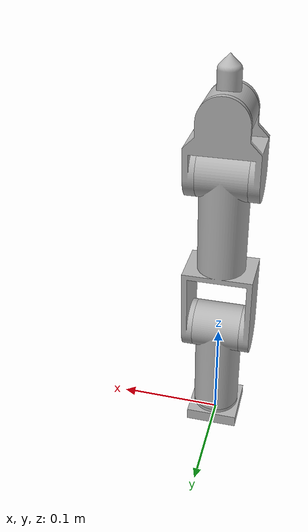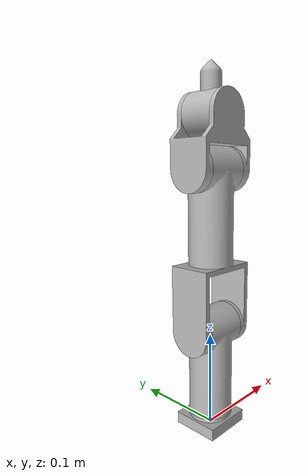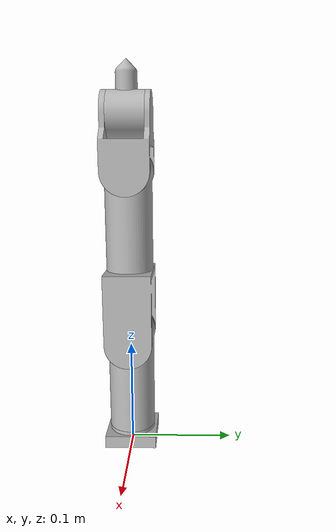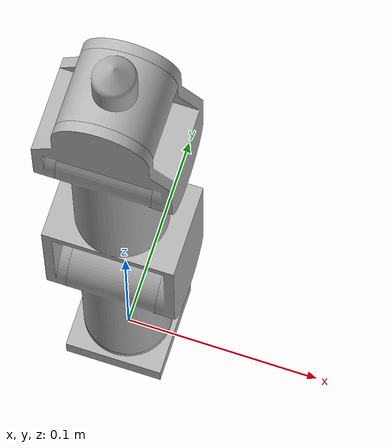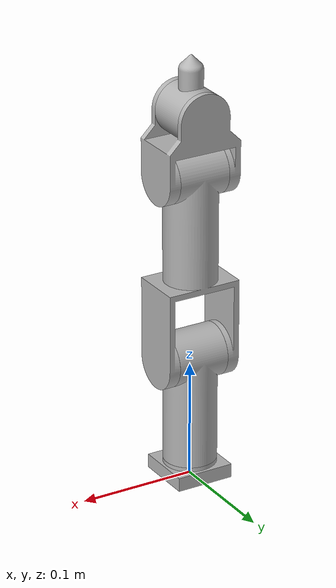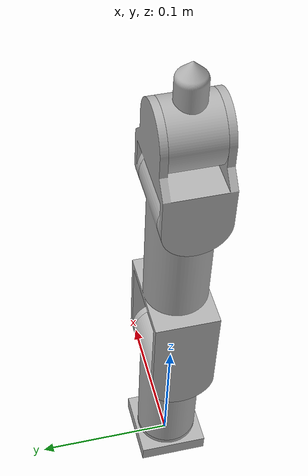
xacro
<?xml version="1.0" ?>
<robot name="4D_dyn_manip" xmlns:xacro="http://www.ros.org/wiki/xacro">

<xacro:include filename="$(find 4D_dyn_manip_description)/urdf/materials.xacro" />
<xacro:include filename="$(find 4D_dyn_manip_description)/urdf/4D_dyn_manip.trans" />
<xacro:include filename="$(find 4D_dyn_manip_description)/urdf/4D_dyn_manip.gazebo" />
<link name="base_link">
  <inertial>
    <origin xyz="-5.171119767084529e-16 -5.847343121241737e-16 0.007250066327963411" rpy="0 0 0"/>
    <mass value="0.28044558799766406"/>
    <inertia ixx="6e-05" iyy="6e-05" izz="0.00011" ixy="-0.0" iyz="-0.0" ixz="-0.0"/>
  </inertial>
  <visual>
    <origin xyz="0 0 0" rpy="0 0 0"/>
    <geometry>
      <mesh filename="package://4D_dyn_manip_description/meshes/base_link.stl" scale="0.001 0.001 0.001"/>
    </geometry>
    <material name="silver"/>
  </visual>
  <collision>
    <origin xyz="0 0 0" rpy="0 0 0"/>
    <geometry>
      <mesh filename="package://4D_dyn_manip_description/meshes/base_link.stl" scale="0.001 0.001 0.001"/>
    </geometry>
  </collision>
</link>

<link name="l1_1">
  <inertial>
    <origin xyz="0.0 0.0 0.05837926071734703" rpy="0 0 0"/>
    <mass value="1.4882159222435947"/>
    <inertia ixx="0.001798" iyy="0.001814" izz="0.000404" ixy="0.0" iyz="0.0" ixz="0.0"/>
  </inertial>
  <visual>
    <origin xyz="-0.0 -0.0 -0.0156" rpy="0 0 0"/>
    <geometry>
      <mesh filename="package://4D_dyn_manip_description/meshes/l1_1.stl" scale="0.001 0.001 0.001"/>
    </geometry>
    <material name="silver"/>
  </visual>
  <collision>
    <origin xyz="-0.0 -0.0 -0.0156" rpy="0 0 0"/>
    <geometry>
      <mesh filename="package://4D_dyn_manip_description/meshes/l1_1.stl" scale="0.001 0.001 0.001"/>
    </geometry>
  </collision>
</link>

<link name="l3_1">
  <inertial>
    <origin xyz="-0.0225 -4.6191202212010775e-17 0.019211679954911187" rpy="0 0 0"/>
    <mass value="0.5313164610981339"/>
    <inertia ixx="0.000383" iyy="0.00054" izz="0.00039" ixy="-0.0" iyz="0.0" ixz="-0.0"/>
  </inertial>
  <visual>
    <origin xyz="-0.0225 0.0 -0.2704" rpy="0 0 0"/>
    <geometry>
      <mesh filename="package://4D_dyn_manip_description/meshes/l3_1.stl" scale="0.001 0.001 0.001"/>
    </geometry>
    <material name="silver"/>
  </visual>
  <collision>
    <origin xyz="-0.0225 0.0 -0.2704" rpy="0 0 0"/>
    <geometry>
      <mesh filename="package://4D_dyn_manip_description/meshes/l3_1.stl" scale="0.001 0.001 0.001"/>
    </geometry>
  </collision>
</link>

<link name="l4_1">
  <inertial>
    <origin xyz="2.415182822690866e-17 0.01749999999999996 0.003312389830272433" rpy="0 0 0"/>
    <mass value="0.4870318174009785"/>
    <inertia ixx="0.00015" iyy="0.00016" izz="0.000102" ixy="-0.0" iyz="0.0" ixz="0.0"/>
  </inertial>
  <visual>
    <origin xyz="-0.0 0.0175 -0.3204" rpy="0 0 0"/>
    <geometry>
      <mesh filename="package://4D_dyn_manip_description/meshes/l4_1.stl" scale="0.001 0.001 0.001"/>
    </geometry>
    <material name="silver"/>
  </visual>
  <collision>
    <origin xyz="-0.0 0.0175 -0.3204" rpy="0 0 0"/>
    <geometry>
      <mesh filename="package://4D_dyn_manip_description/meshes/l4_1.stl" scale="0.001 0.001 0.001"/>
    </geometry>
  </collision>
</link>

<link name="l2_1">
  <inertial>
    <origin xyz="-0.022500000000000003 -1.7673721184167093e-17 0.10037346927140525" rpy="0 0 0"/>
    <mass value="2.0198161254556277"/>
    <inertia ixx="0.006212" iyy="0.006521" izz="0.000861" ixy="-0.0" iyz="0.0" ixz="-0.0"/>
  </inertial>
  <visual>
    <origin xyz="-0.0225 0.0 -0.1089" rpy="0 0 0"/>
    <geometry>
      <mesh filename="package://4D_dyn_manip_description/meshes/l2_1.stl" scale="0.001 0.001 0.001"/>
    </geometry>
    <material name="silver"/>
  </visual>
  <collision>
    <origin xyz="-0.0225 0.0 -0.1089" rpy="0 0 0"/>
    <geometry>
      <mesh filename="package://4D_dyn_manip_description/meshes/l2_1.stl" scale="0.001 0.001 0.001"/>
    </geometry>
  </collision>
</link>

<joint name="l1_to_base_link" type="continuous">
  <origin xyz="0.0 0.0 0.0156" rpy="0 0 0"/>
  <parent link="base_link"/>
  <child link="l1_1"/>
  <axis xyz="-0.0 0.0 1.0"/>
</joint>

<joint name="l3_to_l2" type="revolute">
  <origin xyz="0.0 0.0 0.1615" rpy="0 0 0"/>
  <parent link="l2_1"/>
  <child link="l3_1"/>
  <axis xyz="1.0 0.0 0.0"/>
  <limit upper="1.570796" lower="-1.570796" effort="100" velocity="100"/>
</joint>

<joint name="l4_to_l3" type="revolute">
  <origin xyz="-0.0225 -0.0175 0.05" rpy="0 0 0"/>
  <parent link="l3_1"/>
  <child link="l4_1"/>
  <axis xyz="0.0 -1.0 0.0"/>
  <limit upper="1.570796" lower="-1.570796" effort="100" velocity="100"/>
</joint>

<joint name="l2_to_base_link" type="revolute">
  <origin xyz="0.0225 -0.0 0.0933" rpy="0 0 0"/>
  <parent link="l1_1"/>
  <child link="l2_1"/>
  <axis xyz="1.0 0.0 0.0"/>
  <limit upper="2.356194" lower="-2.356194" effort="100" velocity="100"/>
</joint>

</robot>

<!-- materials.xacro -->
<robot name="4D_dyn_manip" xmlns:xacro="http://www.ros.org/wiki/xacro" >

<material name="silver">
  <color rgba="0.700 0.700 0.700 1.000"/>
</material>

</robot>

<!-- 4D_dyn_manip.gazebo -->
<robot name="4D_dyn_manip" xmlns:xacro="http://www.ros.org/wiki/xacro" >

<xacro:property name="body_color" value="Gazebo/Silver" />

<gazebo>
  <plugin name="control" filename="libgazebo_ros_control.so"/>
</gazebo>
<gazebo reference="base_link">
  <material>${body_color}</material>
  <mu1>0.2</mu1>
  <mu2>0.2</mu2>
  <selfCollide>true</selfCollide>
  <gravity>true</gravity>
</gazebo>

<gazebo reference="l1_1">
  <material>${body_color}</material>
  <mu1>0.2</mu1>
  <mu2>0.2</mu2>
  <selfCollide>true</selfCollide>
</gazebo>

<gazebo reference="l3_1">
  <material>${body_color}</material>
  <mu1>0.2</mu1>
  <mu2>0.2</mu2>
  <selfCollide>true</selfCollide>
</gazebo>

<gazebo reference="l4_1">
  <material>${body_color}</material>
  <mu1>0.2</mu1>
  <mu2>0.2</mu2>
  <selfCollide>true</selfCollide>
</gazebo>

<gazebo reference="l2_1">
  <material>${body_color}</material>
  <mu1>0.2</mu1>
  <mu2>0.2</mu2>
  <selfCollide>true</selfCollide>
</gazebo>

</robot>
